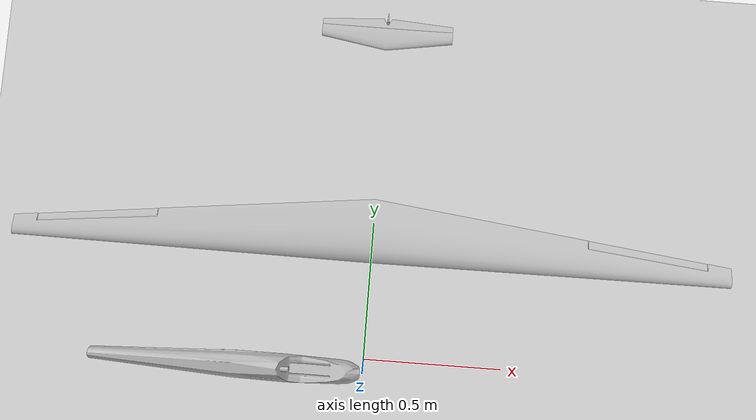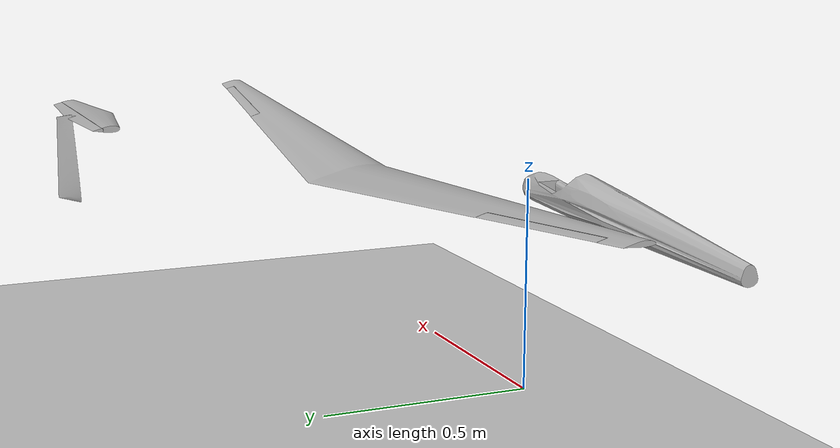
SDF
<?xml version="1.0" ?>
<sdf version="1.5">
    <world name="SimulationRodosWorld">
        <!-- A global light source -->
        <include>
            <uri>model://sun</uri>
        </include>
        <!-- A ground plane -->
        <include>
            <uri>model://ground_plane</uri>
        </include>

        <!-- A testing model that includes the glider model -->
        <include>

            <uri>model://Glider</uri>

        </include>

        <!-- Attach the plugin to this model -->

        <plugin name="rodosPlugin" filename="cmake-build-debug/libexample.so"/>
    </world>
</sdf>

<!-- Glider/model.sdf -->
<sdf version="1.5">
    <model name="Schleicher_ASK_21">
        <self_collide> true </self_collide>
        <enable_wind> true </enable_wind>
        <!-- ALL LINKS -->
        <link name="Fuselage">
            <pose> 0 0 0.5 0 0 0 </pose>
            <collision name="Fuselage_collision">
                <geometry>
                    <mesh>
                        <uri> model://Glider/meshes/Fuselage.dae</uri>
                    </mesh>
                </geometry>
            </collision>
            <visual name="Fuselage_visual">
                <geometry>
                    <mesh>
                        <uri> model://Glider/meshes/Fuselage.dae</uri>
                    </mesh>
                </geometry>
            </visual>
            <inertial>
                <mass>1.2571</mass>
                <pose>-0.00004958 0.391 0.031 0 0 0</pose>
                <inertia>
                    <ixx>0.065625</ixx>
                    <iyy>0.0014583</iyy>
                    <izz>0.065625</izz>
                    <ixy>8.7e-07</ixy>
                    <ixz>-2.65e-06</ixz>
                    <iyz>-0.004375</iyz>
                </inertia>
            </inertial>
            <sensor type="imu" name="IMU_Fuselage">
                <always_on>true</always_on>
                <update_rate>50</update_rate>
                <frame name="IMU_frame">
                    <pose>-0.00004958 0.391 0.031 0 0 0</pose>
                </frame>
            </sensor>
        </link>
        <link name="Tailplane">
            <pose> 0 0 0.5 0 0 0 </pose>
            <collision name="Tailplane_collision">
                <geometry>
                    <mesh>
                        <uri> model://Glider/meshes/Tailplane.dae</uri>
                    </mesh>
                </geometry>
            </collision>
            <visual name="Tailplane_visual">
                <geometry>
                    <mesh>
                        <uri> model://Glider/meshes/Tailplane.dae</uri>
                    </mesh>
                </geometry>
            </visual>
            <inertial>
                <mass>0.029</mass>
                <pose>0 0.986 0.203 0 0 0</pose>
                <inertia>
                    <ixx>0.000005792</ixx>
                    <iyy>0.0002874</iyy>
                    <izz>0.0002926</izz>
                    <ixy>0</ixy>
                    <ixz>0</ixz>
                    <iyz>0.00000009074</iyz>
                </inertia>
            </inertial>
        </link>
        <link name="Wing">
            <pose> 0 0 0.5 0 0 0 </pose>
            <collision name="Wing_collision">
                <geometry>
                    <mesh>
                        <uri> model://Glider/meshes/Wing.dae</uri>
                    </mesh>
                </geometry>
            </collision>
            <visual name="Wing_visual">
                <geometry>
                    <mesh>
                        <uri> model://Glider/meshes/Wing.dae</uri>
                    </mesh>
                </geometry>
            </visual>
            <inertial>
                <mass>0.665</mass>
                <pose>0 0.397 0.066 0 0 0</pose>
                <inertia>
                    <ixx>0.0011</ixx>
                    <iyy>0.1259</iyy>
                    <izz>0.1265</izz>
                    <ixy>0</ixy>
                    <ixz>0</ixz>
                    <iyz>0.00016016</iyz>
                </inertia>
            </inertial>
        </link>
        <link name="Elevator">
            <pose>0 0 0.5 0 0 0 </pose>
            <collision name="Elevator_collision">
                <geometry>
                    <mesh>
                        <uri> model://Glider/meshes/Elevator.dae</uri>
                    </mesh>
                </geometry>
            </collision>
            <visual name="Elevator_visual">
                <geometry>
                    <mesh>
                        <uri> model://Glider/meshes/Elevator.dae</uri>
                    </mesh>
                </geometry>
            </visual>
            <inertial>
                <mass>0.009</mass>
                <pose>0 1.019 0.202 0 0 0</pose>
                <inertia>
                    <ixx>0.0000003445</ixx>
                    <iyy>0.00009298</iyy>
                    <izz>0.00009329</izz>
                    <ixy>0</ixy>
                    <ixz>0</ixz>
                    <iyz>0.00000001638</iyz>
                </inertia>
            </inertial>
        </link>
        <link name="Rudder">
            <pose> 0 0 0.5 0 0 0 </pose>
            <collision name="Rudder_collision">
                <geometry>
                    <mesh>
                        <uri> model://Glider/meshes/Rudder.dae</uri>
                    </mesh>
                </geometry>
            </collision>
            <visual name="Rudder_visual">
                <geometry>
                    <mesh>
                        <uri> model://Glider/meshes/Rudder.dae</uri>
                    </mesh>
                </geometry>
            </visual>
            <inertial>
                <mass>0.008</mass>
                <pose>0 1.037 0.112 0 0 0</pose>
                <inertia>
                    <ixx>0.00001637</ixx>
                    <iyy>0.00001575</iyy>
                    <izz>0.0000006934</izz>
                    <ixy>0</ixy>
                    <ixz>0.00000000005498</ixz>
                    <iyz>-0.000000697</iyz>
                </inertia>
            </inertial>
        </link>
        <link name="LeftAileron">
            <pose> 0 0 0.5 0 0 0 </pose>
            <collision name="LeftAileron_collision">
                <geometry>
                    <mesh>
                        <uri> model://Glider/meshes/LeftAileron.dae</uri>
                    </mesh>
                </geometry>
            </collision>
            <visual name="LeftAileron_visual">
                <geometry>
                    <mesh>
                        <uri> model://Glider/meshes/LeftAileron.dae</uri>
                    </mesh>
                </geometry>
            </visual>
            <inertial>
                <mass>0.012</mass>
                <pose>0.808 0.413 0.094 0 0 0</pose>
                <inertia>
                    <ixx>0.000002678</ixx>
                    <iyy>0.0001171</iyy>
                    <izz>0.0001186</izz>
                    <ixy>0.00001383</ixy>
                    <ixz>-0.00000839</ixz>
                    <iyz>0.000001042</iyz>
                </inertia>
            </inertial>
        </link>
        <link name="RightAileron">
            <pose> 0 0 0.5 0 0 0 </pose>
            <collision name="RightAileron_collision">
                <geometry>
                    <mesh>
                        <uri> model://Glider/meshes/RightAileron.dae</uri>
                    </mesh>
                </geometry>
            </collision>
            <visual name="RightAileron_visual">
                <geometry>
                    <mesh>
                        <uri> model://Glider/meshes/RightAileron.dae</uri>
                    </mesh>
                </geometry>
            </visual>
            <inertial>
                <mass>0.012</mass>
                <pose>-0.808 0.413 0.094 0 0 0</pose>
                <inertia>
                    <ixx>0.000002678</ixx>
                    <iyy>0.0001171</iyy>
                    <izz>0.0001186</izz>
                    <ixy>-0.00001383</ixy>
                    <ixz>0.00000839</ixz>
                    <iyz>0.000001042</iyz>
                </inertia>
            </inertial>
        </link>
        <!-- ALL JOINTS -->
        <joint type="fixed" name="Joint_Fuselage+Tailplane">
            <parent>Fuselage</parent>
            <child>Tailplane</child>
        </joint>
        <joint type="fixed" name="Joint_Fuselage+Wing">
            <parent>Fuselage</parent>
            <child>Wing</child>
        </joint>
        <joint type="revolute" name="Joint_Tailplane+Elevator">
            <pose>-0.189 1.013 0.203 0 0 0</pose>
            <parent>Tailplane</parent>
            <child>Elevator</child>
            <axis>
                <xyz>1 0 0</xyz>
                <limit>
                    <lower>-0.2</lower>
                    <upper>1</upper>
                </limit>
                <dynamics>
                    <damping>0.0001</damping>
                </dynamics>
            </axis>
        </joint>
        <joint type="revolute" name="Joint_Fuselage+Rudder">
            <parent>Fuselage</parent>
            <child>Rudder</child>
            <pose>0 1.016 0.053 0 0 0</pose>
            <axis>
                <xyz>0 0.069008 0.997616</xyz>
                <limit>
                    <lower>-1</lower>
                    <upper>1</upper>
                </limit>
                <dynamics>
                    <damping>0.0001</damping>
                </dynamics>
            </axis>
        </joint>
        <joint type="revolute" name="Joint_Wing+LeftAileron">
            <parent>Wing</parent>
            <child>LeftAileron</child>
            <pose>0.645 0.426 0.083 0 0 0</pose>
            <axis>
                <xyz>0.990864 -0.114803 0.070767</xyz>
                <limit>
                    <lower>-1</lower>
                    <upper>1</upper>
                </limit>
                <dynamics>
                    <damping>0.0001</damping>
                </dynamics>
            </axis>
        </joint>
        <joint type="revolute" name="Joint_Wing+RightAileron">
            <parent>Wing</parent>
            <child>RightAileron</child>
            <pose>-0.645 0.426 0.083 0 0 0</pose>
            <axis>
                <xyz>0.990864 0.114803 -0.070767</xyz>
                <limit>
                    <lower>-1</lower>
                    <upper>1</upper>
                </limit>
                <dynamics>
                    <damping>0.0001</damping>
                </dynamics>
            </axis>
        </joint>

        <!-- Plugins -->

        <plugin name="GliderPlugin" filename="cmake-build-debug/libglider.so"/>

    </model>
</sdf>
